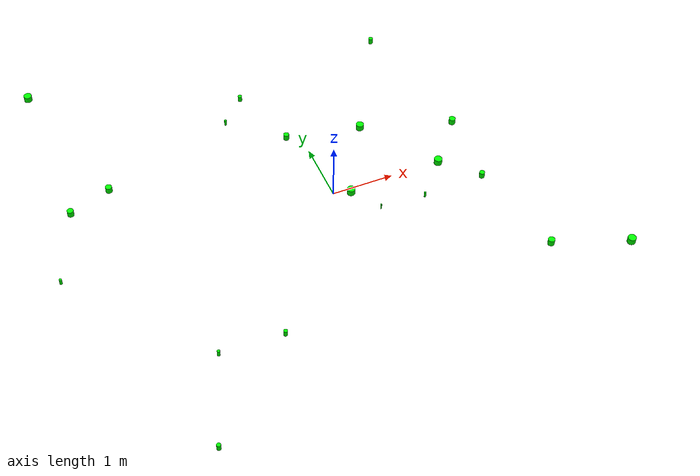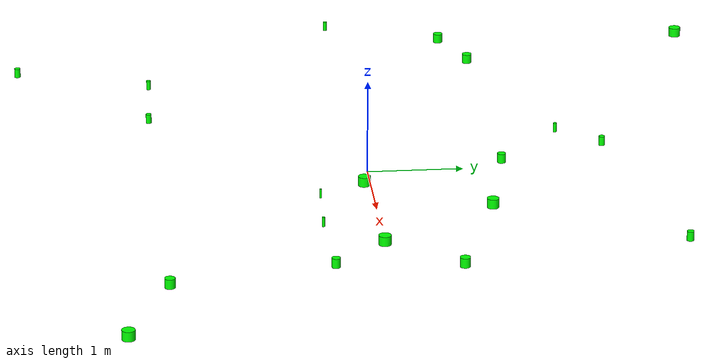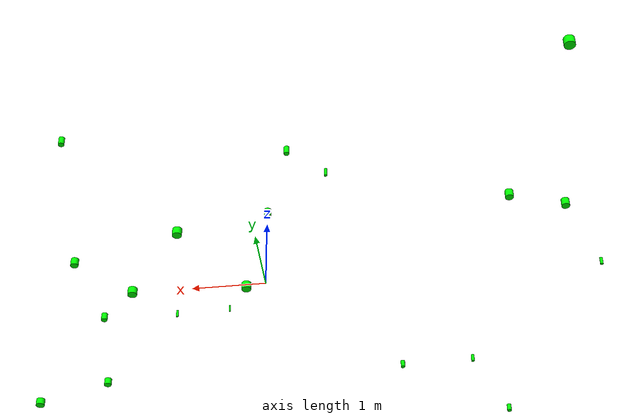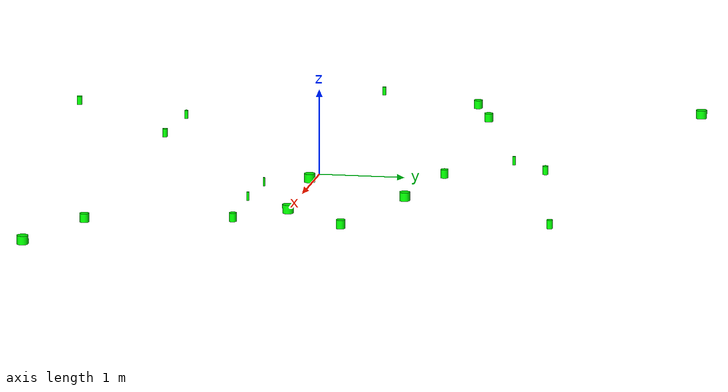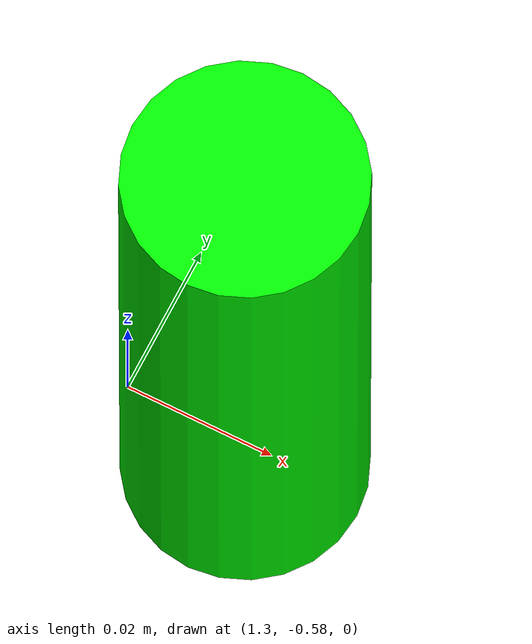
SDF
<?xml version='1.0'?>
<sdf version='1.6'>
  <model name='unit_cylinder'>
    <link name='link_4_clone_0'>
      <pose frame=''>0.976086118014 1.18849499106 0.01 0 0 -0</pose>
      <inertial>
        <mass>1</mass>
        <inertia>
          <ixx>0</ixx>
          <ixy>0</ixy>
          <ixz>0</ixz>
          <iyy>0</iyy>
          <iyz>0</iyz>
          <izz>0</izz>
        </inertia>
        <pose frame=''>0 0 0.01 0 -0 0</pose>
      </inertial>
      <gravity>1</gravity>
      <self_collide>0</self_collide>
      <kinematic>0</kinematic>
      <visual name='visual'>
        <pose frame=''>0 0 0.01 0 -0 0</pose>
        <geometry>
          <cylinder>
            <radius>0.0614434317451</radius>
            <length>0.1</length>
          </cylinder>
        </geometry>
        <material>
          <lighting>1</lighting>
          <script>
            <uri>file://media/materials/scripts/gazebo.material</uri>
            <name>Gazebo/Grey</name>
          </script>
          <shader type='pixel'>
            <normal_map>__default__</normal_map>
          </shader>
          <ambient>0 1 0.3 1</ambient>
          <diffuse>0 1 0 1</diffuse>
          <specular>0 1 0 1</specular>
          <emissive>0 0 0 1</emissive>
        </material>
        <transparency>0</transparency>
        <cast_shadows>1</cast_shadows>
      </visual>
    </link>
    <link name='link_4_clone_1'>
      <pose frame=''>-3.21815571925 1.43623971423 0.01 0 0 -0</pose>
      <inertial>
        <mass>1</mass>
        <inertia>
          <ixx>0</ixx>
          <ixy>0</ixy>
          <ixz>0</ixz>
          <iyy>0</iyy>
          <iyz>0</iyz>
          <izz>0</izz>
        </inertia>
        <pose frame=''>0 0 0.01 0 -0 0</pose>
      </inertial>
      <gravity>1</gravity>
      <self_collide>0</self_collide>
      <kinematic>0</kinematic>
      <visual name='visual'>
        <pose frame=''>0 0 0.01 0 -0 0</pose>
        <geometry>
          <cylinder>
            <radius>0.0523234184967</radius>
            <length>0.1</length>
          </cylinder>
        </geometry>
        <material>
          <lighting>1</lighting>
          <script>
            <uri>file://media/materials/scripts/gazebo.material</uri>
            <name>Gazebo/Grey</name>
          </script>
          <shader type='pixel'>
            <normal_map>__default__</normal_map>
          </shader>
          <ambient>0 1 0.3 1</ambient>
          <diffuse>0 1 0 1</diffuse>
          <specular>0 1 0 1</specular>
          <emissive>0 0 0 1</emissive>
        </material>
        <transparency>0</transparency>
        <cast_shadows>1</cast_shadows>
      </visual>
    </link>
    <link name='link_4_clone_2'>
      <pose frame=''>1.81710290596 -0.00158734171305 0.01 0 0 -0</pose>
      <inertial>
        <mass>1</mass>
        <inertia>
          <ixx>0</ixx>
          <ixy>0</ixy>
          <ixz>0</ixz>
          <iyy>0</iyy>
          <iyz>0</iyz>
          <izz>0</izz>
        </inertia>
        <pose frame=''>0 0 0.01 0 -0 0</pose>
      </inertial>
      <gravity>1</gravity>
      <self_collide>0</self_collide>
      <kinematic>0</kinematic>
      <visual name='visual'>
        <pose frame=''>0 0 0.01 0 -0 0</pose>
        <geometry>
          <cylinder>
            <radius>0.0641650103587</radius>
            <length>0.1</length>
          </cylinder>
        </geometry>
        <material>
          <lighting>1</lighting>
          <script>
            <uri>file://media/materials/scripts/gazebo.material</uri>
            <name>Gazebo/Grey</name>
          </script>
          <shader type='pixel'>
            <normal_map>__default__</normal_map>
          </shader>
          <ambient>0 1 0.3 1</ambient>
          <diffuse>0 1 0 1</diffuse>
          <specular>0 1 0 1</specular>
          <emissive>0 0 0 1</emissive>
        </material>
        <transparency>0</transparency>
        <cast_shadows>1</cast_shadows>
      </visual>
    </link>
    <link name='link_4_clone_3'>
      <pose frame=''>-0.604888793075 2.55797339266 0.01 0 0 -0</pose>
      <inertial>
        <mass>1</mass>
        <inertia>
          <ixx>0</ixx>
          <ixy>0</ixy>
          <ixz>0</ixz>
          <iyy>0</iyy>
          <iyz>0</iyz>
          <izz>0</izz>
        </inertia>
        <pose frame=''>0 0 0.01 0 -0 0</pose>
      </inertial>
      <gravity>1</gravity>
      <self_collide>0</self_collide>
      <kinematic>0</kinematic>
      <visual name='visual'>
        <pose frame=''>0 0 0.01 0 -0 0</pose>
        <geometry>
          <cylinder>
            <radius>0.0322593603388</radius>
            <length>0.1</length>
          </cylinder>
        </geometry>
        <material>
          <lighting>1</lighting>
          <script>
            <uri>file://media/materials/scripts/gazebo.material</uri>
            <name>Gazebo/Grey</name>
          </script>
          <shader type='pixel'>
            <normal_map>__default__</normal_map>
          </shader>
          <ambient>0 1 0.3 1</ambient>
          <diffuse>0 1 0 1</diffuse>
          <specular>0 1 0 1</specular>
          <emissive>0 0 0 1</emissive>
        </material>
        <transparency>0</transparency>
        <cast_shadows>1</cast_shadows>
      </visual>
    </link>
    <link name='link_4_clone_4'>
      <pose frame=''>0.575726251939 -0.536613881101 0.01 0 0 -0</pose>
      <inertial>
        <mass>1</mass>
        <inertia>
          <ixx>0</ixx>
          <ixy>0</ixy>
          <ixz>0</ixz>
          <iyy>0</iyy>
          <iyz>0</iyz>
          <izz>0</izz>
        </inertia>
        <pose frame=''>0 0 0.01 0 -0 0</pose>
      </inertial>
      <gravity>1</gravity>
      <self_collide>0</self_collide>
      <kinematic>0</kinematic>
      <visual name='visual'>
        <pose frame=''>0 0 0.01 0 -0 0</pose>
        <geometry>
          <cylinder>
            <radius>0.0103600836146</radius>
            <length>0.1</length>
          </cylinder>
        </geometry>
        <material>
          <lighting>1</lighting>
          <script>
            <uri>file://media/materials/scripts/gazebo.material</uri>
            <name>Gazebo/Grey</name>
          </script>
          <shader type='pixel'>
            <normal_map>__default__</normal_map>
          </shader>
          <ambient>0 1 0.3 1</ambient>
          <diffuse>0 1 0 1</diffuse>
          <specular>0 1 0 1</specular>
          <emissive>0 0 0 1</emissive>
        </material>
        <transparency>0</transparency>
        <cast_shadows>1</cast_shadows>
      </visual>
    </link>
    <link name='link_4_clone_5'>
      <pose frame=''>-1.6877653529 -2.20967344559 0.01 0 0 -0</pose>
      <inertial>
        <mass>1</mass>
        <inertia>
          <ixx>0</ixx>
          <ixy>0</ixy>
          <ixz>0</ixz>
          <iyy>0</iyy>
          <iyz>0</iyz>
          <izz>0</izz>
        </inertia>
        <pose frame=''>0 0 0.01 0 -0 0</pose>
      </inertial>
      <gravity>1</gravity>
      <self_collide>0</self_collide>
      <kinematic>0</kinematic>
      <visual name='visual'>
        <pose frame=''>0 0 0.01 0 -0 0</pose>
        <geometry>
          <cylinder>
            <radius>0.0296252139845</radius>
            <length>0.1</length>
          </cylinder>
        </geometry>
        <material>
          <lighting>1</lighting>
          <script>
            <uri>file://media/materials/scripts/gazebo.material</uri>
            <name>Gazebo/Grey</name>
          </script>
          <shader type='pixel'>
            <normal_map>__default__</normal_map>
          </shader>
          <ambient>0 1 0.3 1</ambient>
          <diffuse>0 1 0 1</diffuse>
          <specular>0 1 0 1</specular>
          <emissive>0 0 0 1</emissive>
        </material>
        <transparency>0</transparency>
        <cast_shadows>1</cast_shadows>
      </visual>
    </link>
    <link name='link_4_clone_6'>
      <pose frame=''>2.32832100583 -0.534179091652 0.01 0 0 -0</pose>
      <inertial>
        <mass>1</mass>
        <inertia>
          <ixx>0</ixx>
          <ixy>0</ixy>
          <ixz>0</ixz>
          <iyy>0</iyy>
          <iyz>0</iyz>
          <izz>0</izz>
        </inertia>
        <pose frame=''>0 0 0.01 0 -0 0</pose>
      </inertial>
      <gravity>1</gravity>
      <self_collide>0</self_collide>
      <kinematic>0</kinematic>
      <visual name='visual'>
        <pose frame=''>0 0 0.01 0 -0 0</pose>
        <geometry>
          <cylinder>
            <radius>0.0430319976023</radius>
            <length>0.1</length>
          </cylinder>
        </geometry>
        <material>
          <lighting>1</lighting>
          <script>
            <uri>file://media/materials/scripts/gazebo.material</uri>
            <name>Gazebo/Grey</name>
          </script>
          <shader type='pixel'>
            <normal_map>__default__</normal_map>
          </shader>
          <ambient>0 1 0.3 1</ambient>
          <diffuse>0 1 0 1</diffuse>
          <specular>0 1 0 1</specular>
          <emissive>0 0 0 1</emissive>
        </material>
        <transparency>0</transparency>
        <cast_shadows>1</cast_shadows>
      </visual>
    </link>
    <link name='link_4_clone_7'>
      <pose frame=''>-4.41302410906 -0.067689262819 0.01 0 0 -0</pose>
      <inertial>
        <mass>1</mass>
        <inertia>
          <ixx>0</ixx>
          <ixy>0</ixy>
          <ixz>0</ixz>
          <iyy>0</iyy>
          <iyz>0</iyz>
          <izz>0</izz>
        </inertia>
        <pose frame=''>0 0 0.01 0 -0 0</pose>
      </inertial>
      <gravity>1</gravity>
      <self_collide>0</self_collide>
      <kinematic>0</kinematic>
      <visual name='visual'>
        <pose frame=''>0 0 0.01 0 -0 0</pose>
        <geometry>
          <cylinder>
            <radius>0.0203180765255</radius>
            <length>0.1</length>
          </cylinder>
        </geometry>
        <material>
          <lighting>1</lighting>
          <script>
            <uri>file://media/materials/scripts/gazebo.material</uri>
            <name>Gazebo/Grey</name>
          </script>
          <shader type='pixel'>
            <normal_map>__default__</normal_map>
          </shader>
          <ambient>0 1 0.3 1</ambient>
          <diffuse>0 1 0 1</diffuse>
          <specular>0 1 0 1</specular>
          <emissive>0 0 0 1</emissive>
        </material>
        <transparency>0</transparency>
        <cast_shadows>1</cast_shadows>
      </visual>
    </link>
    <link name='link_4_clone_8'>
      <pose frame=''>-2.69518842711 -2.17220835653 0.01 0 0 -0</pose>
      <inertial>
        <mass>1</mass>
        <inertia>
          <ixx>0</ixx>
          <ixy>0</ixy>
          <ixz>0</ixz>
          <iyy>0</iyy>
          <iyz>0</iyz>
          <izz>0</izz>
        </inertia>
        <pose frame=''>0 0 0.01 0 -0 0</pose>
      </inertial>
      <gravity>1</gravity>
      <self_collide>0</self_collide>
      <kinematic>0</kinematic>
      <visual name='visual'>
        <pose frame=''>0 0 0.01 0 -0 0</pose>
        <geometry>
          <cylinder>
            <radius>0.0227439069378</radius>
            <length>0.1</length>
          </cylinder>
        </geometry>
        <material>
          <lighting>1</lighting>
          <script>
            <uri>file://media/materials/scripts/gazebo.material</uri>
            <name>Gazebo/Grey</name>
          </script>
          <shader type='pixel'>
            <normal_map>__default__</normal_map>
          </shader>
          <ambient>0 1 0.3 1</ambient>
          <diffuse>0 1 0 1</diffuse>
          <specular>0 1 0 1</specular>
          <emissive>0 0 0 1</emissive>
        </material>
        <transparency>0</transparency>
        <cast_shadows>1</cast_shadows>
      </visual>
    </link>
    <link name='link_4_clone_9'>
      <pose frame=''>-3.90868421394 1.18678874519 0.01 0 0 -0</pose>
      <inertial>
        <mass>1</mass>
        <inertia>
          <ixx>0</ixx>
          <ixy>0</ixy>
          <ixz>0</ixz>
          <iyy>0</iyy>
          <iyz>0</iyz>
          <izz>0</izz>
        </inertia>
        <pose frame=''>0 0 0.01 0 -0 0</pose>
      </inertial>
      <gravity>1</gravity>
      <self_collide>0</self_collide>
      <kinematic>0</kinematic>
      <visual name='visual'>
        <pose frame=''>0 0 0.01 0 -0 0</pose>
        <geometry>
          <cylinder>
            <radius>0.0514695486815</radius>
            <length>0.1</length>
          </cylinder>
        </geometry>
        <material>
          <lighting>1</lighting>
          <script>
            <uri>file://media/materials/scripts/gazebo.material</uri>
            <name>Gazebo/Grey</name>
          </script>
          <shader type='pixel'>
            <normal_map>__default__</normal_map>
          </shader>
          <ambient>0 1 0.3 1</ambient>
          <diffuse>0 1 0 1</diffuse>
          <specular>0 1 0 1</specular>
          <emissive>0 0 0 1</emissive>
        </material>
        <transparency>0</transparency>
        <cast_shadows>1</cast_shadows>
      </visual>
    </link>
    <link name='link_4_clone_10'>
      <pose frame=''>-3.86668476525 3.92517629884 0.01 0 0 -0</pose>
      <inertial>
        <mass>1</mass>
        <inertia>
          <ixx>0</ixx>
          <ixy>0</ixy>
          <ixz>0</ixz>
          <iyy>0</iyy>
          <iyz>0</iyz>
          <izz>0</izz>
        </inertia>
        <pose frame=''>0 0 0.01 0 -0 0</pose>
      </inertial>
      <gravity>1</gravity>
      <self_collide>0</self_collide>
      <kinematic>0</kinematic>
      <visual name='visual'>
        <pose frame=''>0 0 0.01 0 -0 0</pose>
        <geometry>
          <cylinder>
            <radius>0.0644205428475</radius>
            <length>0.1</length>
          </cylinder>
        </geometry>
        <material>
          <lighting>1</lighting>
          <script>
            <uri>file://media/materials/scripts/gazebo.material</uri>
            <name>Gazebo/Grey</name>
          </script>
          <shader type='pixel'>
            <normal_map>__default__</normal_map>
          </shader>
          <ambient>0 1 0.3 1</ambient>
          <diffuse>0 1 0 1</diffuse>
          <specular>0 1 0 1</specular>
          <emissive>0 0 0 1</emissive>
        </material>
        <transparency>0</transparency>
        <cast_shadows>1</cast_shadows>
      </visual>
    </link>
    <link name='link_4_clone_11'>
      <pose frame=''>2.66343549132 -2.17309642822 0.01 0 0 -0</pose>
      <inertial>
        <mass>1</mass>
        <inertia>
          <ixx>0</ixx>
          <ixy>0</ixy>
          <ixz>0</ixz>
          <iyy>0</iyy>
          <iyz>0</iyz>
          <izz>0</izz>
        </inertia>
        <pose frame=''>0 0 0.01 0 -0 0</pose>
      </inertial>
      <gravity>1</gravity>
      <self_collide>0</self_collide>
      <kinematic>0</kinematic>
      <visual name='visual'>
        <pose frame=''>0 0 0.01 0 -0 0</pose>
        <geometry>
          <cylinder>
            <radius>0.0530918455799</radius>
            <length>0.1</length>
          </cylinder>
        </geometry>
        <material>
          <lighting>1</lighting>
          <script>
            <uri>file://media/materials/scripts/gazebo.material</uri>
            <name>Gazebo/Grey</name>
          </script>
          <shader type='pixel'>
            <normal_map>__default__</normal_map>
          </shader>
          <ambient>0 1 0.3 1</ambient>
          <diffuse>0 1 0 1</diffuse>
          <specular>0 1 0 1</specular>
          <emissive>0 0 0 1</emissive>
        </material>
        <transparency>0</transparency>
        <cast_shadows>1</cast_shadows>
      </visual>
    </link>
    <link name='link_4_clone_12'>
      <pose frame=''>-3.21436693051 -3.61374109163 0.01 0 0 -0</pose>
      <inertial>
        <mass>1</mass>
        <inertia>
          <ixx>0</ixx>
          <ixy>0</ixy>
          <ixz>0</ixz>
          <iyy>0</iyy>
          <iyz>0</iyz>
          <izz>0</izz>
        </inertia>
        <pose frame=''>0 0 0.01 0 -0 0</pose>
      </inertial>
      <gravity>1</gravity>
      <self_collide>0</self_collide>
      <kinematic>0</kinematic>
      <visual name='visual'>
        <pose frame=''>0 0 0.01 0 -0 0</pose>
        <geometry>
          <cylinder>
            <radius>0.0322858388363</radius>
            <length>0.1</length>
          </cylinder>
        </geometry>
        <material>
          <lighting>1</lighting>
          <script>
            <uri>file://media/materials/scripts/gazebo.material</uri>
            <name>Gazebo/Grey</name>
          </script>
          <shader type='pixel'>
            <normal_map>__default__</normal_map>
          </shader>
          <ambient>0 1 0.3 1</ambient>
          <diffuse>0 1 0 1</diffuse>
          <specular>0 1 0 1</specular>
          <emissive>0 0 0 1</emissive>
        </material>
        <transparency>0</transparency>
        <cast_shadows>1</cast_shadows>
      </visual>
    </link>
    <link name='link_4_clone_13'>
      <pose frame=''>0.274997638403 -0.0610435282584 0.01 0 0 -0</pose>
      <inertial>
        <mass>1</mass>
        <inertia>
          <ixx>0</ixx>
          <ixy>0</ixy>
          <ixz>0</ixz>
          <iyy>0</iyy>
          <iyz>0</iyz>
          <izz>0</izz>
        </inertia>
        <pose frame=''>0 0 0.01 0 -0 0</pose>
      </inertial>
      <gravity>1</gravity>
      <self_collide>0</self_collide>
      <kinematic>0</kinematic>
      <visual name='visual'>
        <pose frame=''>0 0 0.01 0 -0 0</pose>
        <geometry>
          <cylinder>
            <radius>0.0639637903706</radius>
            <length>0.1</length>
          </cylinder>
        </geometry>
        <material>
          <lighting>1</lighting>
          <script>
            <uri>file://media/materials/scripts/gazebo.material</uri>
            <name>Gazebo/Grey</name>
          </script>
          <shader type='pixel'>
            <normal_map>__default__</normal_map>
          </shader>
          <ambient>0 1 0.3 1</ambient>
          <diffuse>0 1 0 1</diffuse>
          <specular>0 1 0 1</specular>
          <emissive>0 0 0 1</emissive>
        </material>
        <transparency>0</transparency>
        <cast_shadows>1</cast_shadows>
      </visual>
    </link>
    <link name='link_4_clone_14'>
      <pose frame=''>-0.221967304867 1.43433538608 0.01 0 0 -0</pose>
      <inertial>
        <mass>1</mass>
        <inertia>
          <ixx>0</ixx>
          <ixy>0</ixy>
          <ixz>0</ixz>
          <iyy>0</iyy>
          <iyz>0</iyz>
          <izz>0</izz>
        </inertia>
        <pose frame=''>0 0 0.01 0 -0 0</pose>
      </inertial>
      <gravity>1</gravity>
      <self_collide>0</self_collide>
      <kinematic>0</kinematic>
      <visual name='visual'>
        <pose frame=''>0 0 0.01 0 -0 0</pose>
        <geometry>
          <cylinder>
            <radius>0.0446793487268</radius>
            <length>0.1</length>
          </cylinder>
        </geometry>
        <material>
          <lighting>1</lighting>
          <script>
            <uri>file://media/materials/scripts/gazebo.material</uri>
            <name>Gazebo/Grey</name>
          </script>
          <shader type='pixel'>
            <normal_map>__default__</normal_map>
          </shader>
          <ambient>0 1 0.3 1</ambient>
          <diffuse>0 1 0 1</diffuse>
          <specular>0 1 0 1</specular>
          <emissive>0 0 0 1</emissive>
        </material>
        <transparency>0</transparency>
        <cast_shadows>1</cast_shadows>
      </visual>
    </link>
    <link name='link_4_clone_15'>
      <pose frame=''>1.99654924223 3.03450837117 0.01 0 0 -0</pose>
      <inertial>
        <mass>1</mass>
        <inertia>
          <ixx>0</ixx>
          <ixy>0</ixy>
          <ixz>0</ixz>
          <iyy>0</iyy>
          <iyz>0</iyz>
          <izz>0</izz>
        </inertia>
        <pose frame=''>0 0 0.01 0 -0 0</pose>
      </inertial>
      <gravity>1</gravity>
      <self_collide>0</self_collide>
      <kinematic>0</kinematic>
      <visual name='visual'>
        <pose frame=''>0 0 0.01 0 -0 0</pose>
        <geometry>
          <cylinder>
            <radius>0.0359565131442</radius>
            <length>0.1</length>
          </cylinder>
        </geometry>
        <material>
          <lighting>1</lighting>
          <script>
            <uri>file://media/materials/scripts/gazebo.material</uri>
            <name>Gazebo/Grey</name>
          </script>
          <shader type='pixel'>
            <normal_map>__default__</normal_map>
          </shader>
          <ambient>0 1 0.3 1</ambient>
          <diffuse>0 1 0 1</diffuse>
          <specular>0 1 0 1</specular>
          <emissive>0 0 0 1</emissive>
        </material>
        <transparency>0</transparency>
        <cast_shadows>1</cast_shadows>
      </visual>
    </link>
    <link name='link_4_clone_16'>
      <pose frame=''>1.31244740237 -0.572322107677 0.01 0 0 -0</pose>
      <inertial>
        <mass>1</mass>
        <inertia>
          <ixx>0</ixx>
          <ixy>0</ixy>
          <ixz>0</ixz>
          <iyy>0</iyy>
          <iyz>0</iyz>
          <izz>0</izz>
        </inertia>
        <pose frame=''>0 0 0.01 0 -0 0</pose>
      </inertial>
      <gravity>1</gravity>
      <self_collide>0</self_collide>
      <kinematic>0</kinematic>
      <visual name='visual'>
        <pose frame=''>0 0 0.01 0 -0 0</pose>
        <geometry>
          <cylinder>
            <radius>0.0156820370707</radius>
            <length>0.1</length>
          </cylinder>
        </geometry>
        <material>
          <lighting>1</lighting>
          <script>
            <uri>file://media/materials/scripts/gazebo.material</uri>
            <name>Gazebo/Grey</name>
          </script>
          <shader type='pixel'>
            <normal_map>__default__</normal_map>
          </shader>
          <ambient>0 1 0.3 1</ambient>
          <diffuse>0 1 0 1</diffuse>
          <specular>0 1 0 1</specular>
          <emissive>0 0 0 1</emissive>
        </material>
        <transparency>0</transparency>
        <cast_shadows>1</cast_shadows>
      </visual>
    </link>
    <link name='link_4_clone_17'>
      <pose frame=''>3.80708763968 -2.61134884184 0.01 0 0 -0</pose>
      <inertial>
        <mass>1</mass>
        <inertia>
          <ixx>0</ixx>
          <ixy>0</ixy>
          <ixz>0</ixz>
          <iyy>0</iyy>
          <iyz>0</iyz>
          <izz>0</izz>
        </inertia>
        <pose frame=''>0 0 0.01 0 -0 0</pose>
      </inertial>
      <gravity>1</gravity>
      <self_collide>0</self_collide>
      <kinematic>0</kinematic>
      <visual name='visual'>
        <pose frame=''>0 0 0.01 0 -0 0</pose>
        <geometry>
          <cylinder>
            <radius>0.0652899973217</radius>
            <length>0.1</length>
          </cylinder>
        </geometry>
        <material>
          <lighting>1</lighting>
          <script>
            <uri>file://media/materials/scripts/gazebo.material</uri>
            <name>Gazebo/Grey</name>
          </script>
          <shader type='pixel'>
            <normal_map>__default__</normal_map>
          </shader>
          <ambient>0 1 0.3 1</ambient>
          <diffuse>0 1 0 1</diffuse>
          <specular>0 1 0 1</specular>
          <emissive>0 0 0 1</emissive>
        </material>
        <transparency>0</transparency>
        <cast_shadows>1</cast_shadows>
      </visual>
    </link>
    <link name='link_4_clone_18'>
      <pose frame=''>-1.02215208348 2.11610160172 0.01 0 0 -0</pose>
      <inertial>
        <mass>1</mass>
        <inertia>
          <ixx>0</ixx>
          <ixy>0</ixy>
          <ixz>0</ixz>
          <iyy>0</iyy>
          <iyz>0</iyz>
          <izz>0</izz>
        </inertia>
        <pose frame=''>0 0 0.01 0 -0 0</pose>
      </inertial>
      <gravity>1</gravity>
      <self_collide>0</self_collide>
      <kinematic>0</kinematic>
      <visual name='visual'>
        <pose frame=''>0 0 0.01 0 -0 0</pose>
        <geometry>
          <cylinder>
            <radius>0.0189673189521</radius>
            <length>0.1</length>
          </cylinder>
        </geometry>
        <material>
          <lighting>1</lighting>
          <script>
            <uri>file://media/materials/scripts/gazebo.material</uri>
            <name>Gazebo/Grey</name>
          </script>
          <shader type='pixel'>
            <normal_map>__default__</normal_map>
          </shader>
          <ambient>0 1 0.3 1</ambient>
          <diffuse>0 1 0 1</diffuse>
          <specular>0 1 0 1</specular>
          <emissive>0 0 0 1</emissive>
        </material>
        <transparency>0</transparency>
        <cast_shadows>1</cast_shadows>
      </visual>
    </link>
    <link name='link_4_clone_19'>
      <pose frame=''>2.42771761266 0.726106381975 0.01 0 0 -0</pose>
      <inertial>
        <mass>1</mass>
        <inertia>
          <ixx>0</ixx>
          <ixy>0</ixy>
          <ixz>0</ixz>
          <iyy>0</iyy>
          <iyz>0</iyz>
          <izz>0</izz>
        </inertia>
        <pose frame=''>0 0 0.01 0 -0 0</pose>
      </inertial>
      <gravity>1</gravity>
      <self_collide>0</self_collide>
      <kinematic>0</kinematic>
      <visual name='visual'>
        <pose frame=''>0 0 0.01 0 -0 0</pose>
        <geometry>
          <cylinder>
            <radius>0.0523026728325</radius>
            <length>0.1</length>
          </cylinder>
        </geometry>
        <material>
          <lighting>1</lighting>
          <script>
            <uri>file://media/materials/scripts/gazebo.material</uri>
            <name>Gazebo/Grey</name>
          </script>
          <shader type='pixel'>
            <normal_map>__default__</normal_map>
          </shader>
          <ambient>0 1 0.3 1</ambient>
          <diffuse>0 1 0 1</diffuse>
          <specular>0 1 0 1</specular>
          <emissive>0 0 0 1</emissive>
        </material>
        <transparency>0</transparency>
        <cast_shadows>1</cast_shadows>
      </visual>
    </link>
    <static>1</static>
    <allow_auto_disable>1</allow_auto_disable>
  </model>
</sdf>
